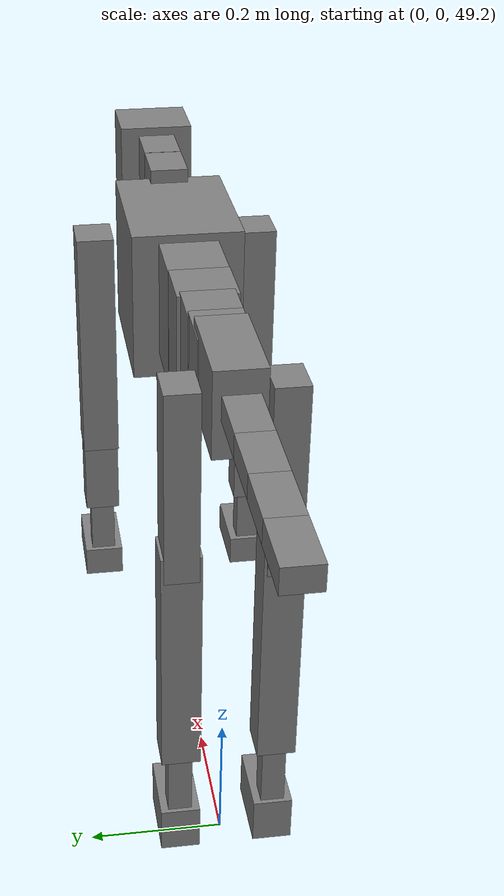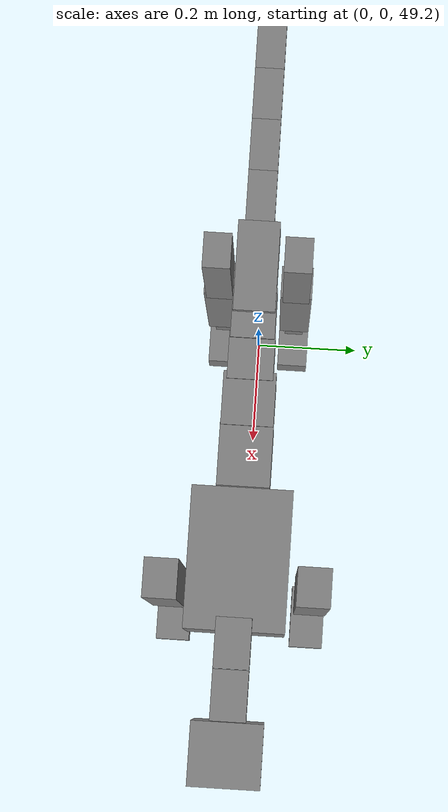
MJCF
<mujoco model="dog">

    <default>
        <joint armature="0.02" stiffness="1" damping="0.2" limited="true"/>
        <geom condim="3" friction="1 0.05 0.05" margin="0.01"/>
        <motor ctrllimited="true" ctrlrange="-1.0 1.0" forcelimited="true" gear="50"/>
    </default>

    <compiler inertiafromgeom="true" angle="radian"/>

    <option timestep="0.016" iterations="50" tolerance="1e-10" solver="Newton" jacobian="dense" cone="pyramidal"/>

    <size nconmax="20000" njmax="60000" nstack="5000000"/>
    <visual>
        <map force="0.1" zfar="30"/>
        <rgba haze="0.15 0.25 0.35 1"/>
        <quality shadowsize="2048"/>
        <global offwidth="800" offheight="800"/>
    </visual>

    <asset>
        <texture type="skybox" builtin="gradient" rgb1="0.3 0.5 0.7" rgb2="0 0 0" width="512" height="512"/>
        <texture name="texplane" type="2d" builtin="checker" rgb1=".2 .3 .4" rgb2=".1 0.15 0.2" width="512" height="512"
                 mark="cross" markrgb=".8 .8 .8"/>
        <texture name="texgeom" type="cube" builtin="flat" mark="cross" width="127" height="1278" rgb1="0.8 0.6 0.4"
                 rgb2="0.8 0.6 0.4" markrgb="1 1 1" random="0.01"/>

        <material name="matplane" reflectance="0.3" texture="texplane" texrepeat="1 1" texuniform="true"/>
        <material name="matgeom" texture="texgeom" texuniform="true" rgba="0.8 0.6 .4 1"/>
    </asset>

    <worldbody>
        <geom name="floor" pos="0 0 0" size="0 0 .25" type="plane" material="matplane" condim="3"/>

        <light directional="false" diffuse=".2 .2 .2" specular="0 0 0" pos="0 0 5" dir="0 0 -1" castshadow="false"/>
        <light mode="targetbodycom" target="torso" directional="false" diffuse=".8 .8 .8" specular="0.3 0.3 0.3"
               pos="0 0 4.0" dir="0 0 -1"/>

        <body name="root" pos="0 0 50">
            <freejoint name="root_1"/>
            <geom type="box" pos="0 0 -0.02" size="0.0774  0.0358  0.063" density="2030"/>

            <body name="spine1" pos="0.054 0 0">
                <joint name="spine1_y" axis="0 1 0" range="0 0.7" limited="true"/>
                <geom type="box" pos="0.02375 0 -0.03" size="0.04375  0.0375  0.05985" density="2030"/>

                <body name="spine2" pos="0.0612 0 0">
                    <joint name="spine2_y" axis="0 1 0" range="-0.15 0.15" limited="true"/>
                    <geom type="box" pos="0.03555  0  -0.04" size="0.04055  0.039  0.06615" density="2030"/>

                    <body name="spine3" pos="0.0730 0 0">
                        <joint name="spine3_y" axis="0 1 0" range="-0.15 0.15" limited="true"/>
                        <geom type="box" pos="0.03555  0  -0.057" size="0.04555  0.0445  0.081" density="2030"/>

                        <body name="spine4" pos="0.0780 0 0">
                            <joint name="spine4_y" axis="0 1 0" range="-0.15 0.15" limited="true"/>
                            <geom type="box" pos="0.05265  0  -0.07" size="0.05265  0.045  0.09135" density="2030"/>

                            <body name="torso" pos="0.1082 0 0">
                                <joint name="torso_y" axis="0 1 0" range="-0.15 0.15" limited="true"/>
                                <geom type="box" pos="0.11925  0  -0.085" size="0.11925  0.085  0.11745"
                                      density="2030"/>

                                <body name="neck1" pos="0.2160  0   0.0180">
                                    <joint name="neck1_y" axis="0 1 0" range="-1.2  -1" limited="true"/>
                                    <geom type="box" pos="0.0423  0  0" size="0.0423  0.03  0.036" density="2325"/>

                                    <body name="neck2" pos="0.0853  0  0">
                                        <joint name="neck2_y" axis="0 1 0" range="0.1  0" limited="true"/>
                                        <geom type="box" pos="0.0423  0  0" size="0.0423  0.03  0.036" density="2325"/>

                                        <body name="head" pos="0.0853  0  0">
                                            <joint name="head_y" axis="0 1 0" range="-0.3  -0.2" limited="true"/>
                                            <geom type="box" pos="0.0531  0  -0.055" size="0.0531  0.06  0.1044"
                                                  density="4030"/>

                                        </body>
                                    </body>
                                </body>

                                <body name="front_shoulder" pos="0.156  0   -0.0480">
                                    <joint name="front_shoulder_y" axis="0 1 0" range="-1 1.5" limited="true"/>
                                    <geom type="box" pos="0 0.13 -0.1643" size="0.0343  0.0293  0.1909" density="1158"/>
                                    <geom type="box" pos="0 -0.13 -0.1643" size="0.0343  0.0293  0.1909"
                                          density="1158"/>

                                    <body name="front_elbow" pos="0  0  -0.3285">
                                        <joint name="front_elbow_y" axis="0 1 0" range="-2 0" limited="true"/>
                                        <geom type="box" pos="0 0.13 -0.0738" size="0.0275  0.0281  0.0738"
                                              density="1081"/>
                                        <geom type="box" pos="0 -0.13 -0.0738" size="0.0275  0.0281  0.0738"
                                              density="1081"/>

                                        <body name="front_wrist" pos="0  0  -0.1475">
                                            <joint name="front_wrist_y" axis="0 1 0" range="-0.2 0" limited="true"/>
                                            <geom type="box" pos="0 0.13 -0.0528" size="0.0178  0.0198  0.0659"
                                                  density="1664"/>
                                            <geom type="box" pos="0 -0.13 -0.0528" size="0.0178  0.0198  0.0659"
                                                  density="1664"/>

                                            <body name="front_finger_end" pos="0  0  -0.1055">
                                                <joint name="front_finger_y" axis="0 1 0" range="-0.4 1"
                                                       limited="true"/>
                                                <geom type="box" pos="0.0320  0.13  -0.0103"
                                                      size="0.0586  0.0320  0.0253" density="1515"/>
                                                <geom type="box" pos="0.0320  -0.13  -0.0103"
                                                      size="0.0586  0.0320  0.0253" density="1515"/>

                                            </body>

                                        </body>
                                    </body>
                                </body>

                            </body>
                        </body>
                    </body>
                </body>
            </body>

            <body name="back_hip" pos="-0.03 0 -0.018">
                <joint name="back_hip_y" axis="0 1 0" range="-1.5 0.3" limited="true"/>
                <geom type="box" pos="0 0.07 -0.1212" size="0.0310  0.0243  0.1440" density="1154"/>
                <geom type="box" pos="0 -0.07 -0.1212" size="0.0310  0.0243  0.1440" density="1154"/>

                <body name="back_knee" pos="0  0  -0.2424">
                    <joint name="back_knee_y" axis="0 1 0" range="0 2.8" limited="true"/>
                    <geom type="box" pos="0 0.07 -0.1656" size="0.0289  0.0285  0.1811" density="1227"/>
                    <geom type="box" pos="0 -0.07 -0.1656" size="0.0289  0.0285  0.1811" density="1227"/>

                    <body name="back_ankle" pos="0  0  -0.3311">
                        <joint name="back_ankle_y" axis="0 1 0" range="-2.2 0" limited="true"/>
                        <geom type="box" pos="0 0.07 -0.0658" size="0.0176  0.0176  0.0771" density="1284"/>
                        <geom type="box" pos="0 -0.07 -0.0658" size="0.0176  0.0176  0.0771" density="1284"/>

                        <body name="back_toe_end" pos="0  0  -0.1317">
                            <joint name="back_toe_y" axis="0 1 0" range="-0.4 1" limited="true"/>
                            <geom type="box" pos="0.0291  0.07  -0.0213" size="0.0533  0.0291  0.0363" density="1515"/>
                            <geom type="box" pos="0.0291  -0.07  -0.0213" size="0.0533  0.0291  0.0363" density="1515"/>

                        </body>
                    </body>
                </body>
            </body>

            <body name="tail1" pos="-0.074 0 -0.006">
                <joint name="tail1_y" axis="0 1 0" range="-0.2 0.2" limited="true"/>
                <geom type="box" pos="-0.0536  0  0" size="0.045  0.025  0.0175" density="1587"/>

                <body name="tail2" pos="-0.09 0 0">
                    <joint name="tail2_y" axis="0 1 0" range="-0.2 0.2" limited="true"/>
                    <geom type="box" pos="-0.0536  0  0" size="0.045  0.025  0.0175" density="1587"/>

                    <body name="tail3" pos="-0.09 0 0">
                        <joint name="tail3_y" axis="0 1 0" range="-0.2 0.2" limited="true"/>
                        <geom type="box" pos="-0.0536  0  0" size="0.045  0.025  0.0175" density="1587"/>

                        <body name="tail4" pos="-0.09 0 0">
                            <joint name="tail4_y" axis="0 1 0" range="-0.2 0.2" limited="true"/>
                            <geom type="box" pos="-0.0536  0  0" size="0.045  0.025  0.0175" density="1587"/>

                        </body>
                    </body>
                </body>
            </body>
        </body>
    </worldbody>

    <actuator>
        <motor joint="spine1_y" forcerange="-150 150     "/>
        <motor joint="spine2_y" forcerange="-150 150     "/>
        <motor joint="spine3_y" forcerange="-150 150     "/>
        <motor joint="spine4_y" forcerange="-150 150     "/>
        <motor joint="torso_y" forcerange="-150 150     "/>
        <motor joint="neck1_y" forcerange="-100 100       "/>
        <motor joint="neck2_y" forcerange="-100 100       "/>
        <motor joint="head_y" forcerange="-150 150       "/>
        <motor joint="front_shoulder_y" forcerange="-139.51 156.01"/>
        <motor joint="front_elbow_y" forcerange="-153.43 151.08"/>
        <motor joint="front_wrist_y" forcerange="-94.22 64.37"/>
        <motor joint="front_finger_y" forcerange="-53.51 77.02"/>
        <motor joint="back_hip_y" forcerange="-271.41 253.18"/>
        <motor joint="back_knee_y" forcerange="-370.11 244.68"/>
        <motor joint="back_angle_y" forcerange="-127.79 53.34"/>
        <motor joint="back_toe_y" forcerange="-56.64 96.00"/>
        <motor joint="tail1_y" forcerange="-50 50     "/>
        <motor joint="tail2_y" forcerange="-50 50     "/>
        <motor joint="tail3_y" forcerange="-50 50     "/>
        <motor joint="tail4_y" forcerange="-50 50     "/>
    </actuator>
</mujoco>
